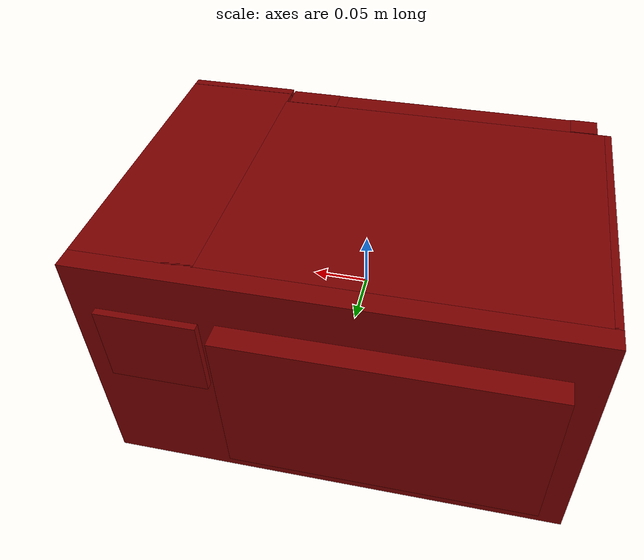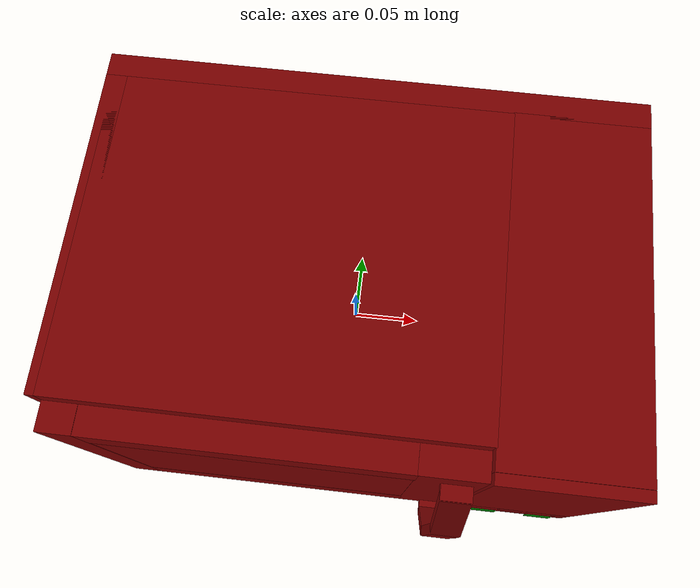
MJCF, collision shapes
<mujoco model="model">
  <compiler angle="radian"/>
  <asset>
    <mesh file="visuals/door.obj" name="door_vis"/>
    <mesh file="visuals/door_Clear.obj" name="door_Clear_vis"/>
    <mesh file="visuals/Body001.obj" name="Body001_vis"/>
    <mesh file="visuals/Button001.obj" name="Button001_vis"/>
    <mesh file="visuals/Button002.obj" name="Button002_vis"/>
    <mesh file="visuals/Disc001.obj" name="Disc001_vis"/>
    <texture file="visuals/T_BC001.png" name="Body001_material" type="2d"/>
    <material name="Body001_material" rgba="1 1 1 1.0" texture="Body001_material" shininess="0.5" specular="0.3103448502657381"/>
    <texture file="visuals/T_BC001.png" name="door_material" type="2d"/>
    <material name="door_material" rgba="1 1 1 1.0" texture="door_material" shininess="0.5" specular="0.3103448502657381"/>
    <texture file="visuals/T_BC001.png" name="door_Clear_material" type="2d"/>
    <material name="door_Clear_material" rgba="1 1 1 0.800000011920929" texture="door_Clear_material" shininess="0.5" specular="0.3103448502657381"/>
    <texture file="visuals/T_BC001.png" name="Button001_material" type="2d"/>
    <material name="Button001_material" rgba="1 1 1 1.0" texture="Button001_material" shininess="0.5" specular="0.3103448502657381"/>
    <texture file="visuals/T_BC001.png" name="Button002_material" type="2d"/>
    <material name="Button002_material" rgba="1 1 1 1.0" texture="Button002_material" shininess="0.5" specular="0.3103448502657381"/>
    <texture file="visuals/T_BC001.png" name="Disc001_material" type="2d"/>
    <material name="Disc001_material" rgba="1 1 1 1.0" texture="Disc001_material" shininess="0.5" specular="0.3103448502657381"/>
  </asset>
  <default>
    <default class="visual">
      <geom conaffinity="0" contype="0" group="1" type="mesh"/>
    </default>
    <default class="collision">
      <geom group="0" rgba="0.5 0 0 0.5"/>
    </default>
    <default class="spawn">
      <geom group="0" rgba="1 1 1 0.5" contype="0" conaffinity="0"/>
      <site group="0" rgba="1 1 1 0.5"/>
    </default>
    <default class="region">
      <geom group="1" conaffinity="0" contype="0" rgba="0 1 0 0"/>
    </default>
  </default>
  <worldbody>
    <body>
      <body name="object">
        <geom class="collision" type="box" pos="-0.05099000036716461 0.02648795209825039 -0.07745513319969177" size="0.0954003557562828 0.0954003557562828 0.0022081872448325157" quat="1.0 0.0 0.0 0.0" name="tray" rgba="0 1 0 0.5"/>
        <geom class="collision" type="box" pos="0.12796650826931 -0.1389474719762802 -0.0914270207285881" size="0.010516499169170856 0.00045945128658786416 0.005988413468003273" quat="1.0 0.0 0.0 0.0" name="start_button" rgba="0.0 0.5 0 0.5"/>
        <geom class="collision" type="box" pos="0.17628632485866547 -0.1389474719762802 -0.09162887930870056" size="0.010516501031816006 0.0004594513447955251 0.005988414864987135" quat="1.0 0.0 0.0 0.0" name="stop_button" rgba="0.0 0.5 0 0.5"/>
        <geom mesh="Body001_vis" type="mesh" solimp="0.998 0.998 0.001" solref="0.001 1" density="100" friction="0.95 0.3 0.1" class="visual" material="Body001_material"/>
        <geom class="collision" type="box" pos="1.4348188415169716e-08 0.13933226466178894 -4.831235855817795e-09" size="0.20219705998897552 0.009999613277614117 0.11311747133731842" quat="1.0 0.0 0.0 0.0"/>
        <geom class="collision" type="box" pos="-0.1942330151796341 0.008786446414887905 -4.831235855817795e-09" size="0.007964090444147587 0.12222838401794434 0.11311747133731842" quat="1.0 0.0 0.0 0.0"/>
        <geom class="collision" type="box" pos="0.1521015614271164 0.0016505586681887507 -4.831235855817795e-09" size="0.05009554699063301 0.13005173206329346 0.11311747133731842" quat="1.0 0.0 0.0 0.0"/>
        <geom class="collision" type="box" pos="-0.0465652197599411 0.008786432445049286 0.10253211855888367" size="0.1495094895362854 0.12222840636968613 0.010585399344563484" quat="1.0 0.0 0.0 0.0"/>
        <geom class="collision" type="box" pos="-0.0465652197599411 0.008786432445049286 -0.10107842832803726" size="0.1495094895362854 0.12222839891910553 0.012039145454764366" quat="1.0 0.0 0.0 0.0"/>
        <geom class="collision" type="box" pos="-0.0465652197599411 -0.09754457324743271 -0.08693338930606842" size="0.1495094746351242 0.014375537633895874 0.0023294060956686735" quat="1.0 0.0 0.0 0.0"/>
        <geom class="collision" type="box" pos="0.0944364070892334 0.008786446414887905 0.00086567597463727" size="0.00913462694734335 0.12070714682340622 0.09062015265226364" quat="1.0 0.0 0.0 0.0"/>
        <geom class="collision" type="box" pos="-0.0460498109459877 0.15882658958435059 0.00086567597463727" size="0.13114111125469208 0.010570645332336426 0.07321394234895706" quat="1.0 0.0 0.0 0.0"/>
        <geom class="collision" type="box" pos="0.13999605178833008 0.15208840370178223 0.03737804666161537" size="0.04138976335525513 0.0034505727235227823 0.03502754867076874" quat="1.0 0.0 0.0 0.0"/>
        <geom class="collision" type="box" pos="0.1521015614271164 -0.1327347755432129 0.01649644784629345" size="0.05009553208947182 0.004148751962929964 0.0966215431690216" quat="1.0 0.0 0.0 0.0"/>
        <geom class="collision" type="box" pos="0.1521015465259552 -0.1327347606420517 -0.1071324497461319" size="0.05009535700082779 0.004148751962929964 0.005985031835734844" quat="1.0 0.0 0.0 0.0"/>
        <geom class="collision" type="box" pos="0.15268686413764954 -0.1327347755432129 -0.09073615074157715" size="0.009805336594581604 0.0041487449780106544 0.010755348019301891" quat="1.0 0.0 0.0 0.0"/>
        <geom class="collision" type="box" pos="0.10796012729406357 -0.1327347755432129 -0.09073615074157715" size="0.0054266853258013725 0.004148753359913826 0.010755347087979317" quat="1.0 0.0 0.0 0.0"/>
        <geom class="collision" type="box" pos="0.19667455554008484 -0.1327347755432129 -0.09073615074157715" size="0.005522533785551786 0.00414875615388155 0.010755350813269615" quat="1.0 0.0 0.0 0.0"/>
        <body name="door">
          <joint axis="0.0 0.0 1.0" pos="-0.18759776651859283 -0.12725630402565002 0.0" limited="true" name="microjoint" range="-1.5707963267948966 0.0" type="hinge" damping="1" frictionloss="1" armature=".01" stiffness="0.05"/>
          <geom mesh="door_vis" type="mesh" solimp="0.998 0.998 0.001" solref="0.001 1" density="100" friction="0.95 0.3 0.1" class="visual" material="door_material"/>
          <geom class="collision" type="box" pos="-0.17825846374034882 -0.12572531402111053 7.345585618168116e-05" size="0.012089542113244534 0.010277654975652695 0.11239656060934067" quat="1.0 0.0 0.0 0.0"/>
          <geom class="collision" type="box" pos="0.07728265225887299 -0.12572531402111053 -0.00014102598652243614" size="0.022913599386811256 0.010277669876813889 0.1122722253203392" quat="1.0 0.0 0.0 0.0"/>
          <geom class="collision" type="box" pos="-0.05554768443107605 -0.12572532892227173 0.09608612954616547" size="0.11069587618112564 0.01027766615152359 0.01585853286087513" quat="1.0 0.0 0.0 0.0"/>
          <geom class="collision" type="box" pos="-0.05554768443107605 -0.12572532892227173 -0.09366853535175323" size="0.11069587618112564 0.010277658700942993 0.018616169691085815" quat="1.0 0.0 0.0 0.0"/>
          <geom class="collision" type="box" pos="0.08194988965988159 -0.1423739492893219 0.08713401854038239" size="0.010653039440512657 0.0053637376986444 0.004253956954926252" quat="1.0 0.0 0.0 0.0"/>
          <geom class="collision" type="box" pos="0.08194988965988159 -0.1423739492893219 -0.08571717143058777" size="0.010653043165802956 0.0053637376986444 0.004253956954926252" quat="1.0 0.0 0.0 0.0"/>
          <geom class="collision" type="box" pos="0.08194988965988159 -0.15443459153175354 -0.06283354759216309" size="0.0038501075468957424 0.010653049685060978 0.025359345600008965" quat="0.6934394240379333 0.13835389912128448 0.1383538842201233 -0.6934393644332886"/>
          <geom class="collision" type="box" pos="0.08194988965988159 -0.15443459153175354 0.06424000859260559" size="0.0038501068484038115 0.010653049685060978 0.025359343737363815" quat="0.13835376501083374 0.6934393644332886 -0.6934394836425781 0.1383538395166397"/>
          <geom class="collision" type="box" pos="0.08194988965988159 -0.16415800154209137 4.018540494143963e-06" size="0.010653048753738403 0.0038501082453876734 0.036364488303661346" quat="1.0 0.0 0.0 0.0" name="door_handle"/>
          <body name="door_Clear">
            <geom mesh="door_Clear_vis" type="mesh" solimp="0.998 0.998 0.001" solref="0.001 1" density="100" friction="0.95 0.3 0.1" class="visual" material="door_Clear_material"/>
            <geom class="collision" type="box" pos="-0.055789850652217865 -0.13231664896011353 0.001923413947224617" size="0.11349328607320786 0.003455802798271179 0.0824943259358406" quat="1.0 0.0 0.0 0.0"/>
          </body>
        </body>
        <body name="Button001">
          <joint axis="0.0 1.0 0.0" pos="0.12796650826931 -0.13738946616649628 -0.09158383309841156" limited="true" name="Button001_joint" range="0.0 0.0015" type="slide" damping="1" frictionloss="1" armature=".01" stiffness="0.05"/>
          <geom mesh="Button001_vis" type="mesh" solimp="0.998 0.998 0.001" solref="0.001 1" density="100" friction="0.95 0.3 0.1" class="visual" material="Button001_material"/>
          <geom class="collision" type="box" pos="0.12796650826931 -0.13738946616649628 -0.0914270207285881" size="0.010516494512557983 0.0004594511410687119 0.005988410674035549" quat="1.0 0.0 0.0 0.0"/>
        </body>
        <body name="Button002">
          <joint axis="0.0 1.0 0.0" pos="0.17628632485866547 -0.13738946616649628 -0.09162887930870056" limited="true" name="Button002_joint" range="0.0 0.0015" type="slide" damping="1" frictionloss="1" armature=".01" stiffness="0.05"/>
          <geom mesh="Button002_vis" type="mesh" solimp="0.998 0.998 0.001" solref="0.001 1" density="100" friction="0.95 0.3 0.1" class="visual" material="Button002_material"/>
          <geom class="collision" type="box" pos="0.17628632485866547 -0.13738946616649628 -0.09162887930870056" size="0.010516496375203133 0.0004594511992763728 0.005988412071019411" quat="1.0 0.0 0.0 0.0"/>
        </body>
        <body name="Disc001">
          <joint axis="0.0 0.0 1.0" pos="-0.05099000036716461 0.02648795209825039 -0.08152633905410767" limited="false" name="Disc001_joint" range="0 360" type="hinge" damping="1" frictionloss="1" armature=".01" stiffness="0.05"/>
          <geom mesh="Disc001_vis" type="mesh" solimp="0.998 0.998 0.001" solref="0.001 1" density="100" friction="0.95 0.3 0.1" class="visual" material="Disc001_material"/>
          <geom class="collision" type="cylinder" pos="-0.05099000036716461 0.02648795209825039 -0.08333335071802139" size="0.0954003557562828 0.0022081872448325157" quat="1.0 0.0 0.0 0.0"/>
        </body>
        <geom class="region" name="reg_main" type="box" pos="-3.725290298461914e-09 0.015923410654067993 0.0" size="0.2021970897912979 0.15347382426261902 0.11311747133731842"/>
        <geom class="region" name="reg_int" type="box" pos="-0.04771116003394127 0.02625514566898346 0.004019197076559067" size="0.14497092738747597 0.11030887067317963 0.09020712599158287"/>
      </body>
    </body>
  </worldbody>
  <actuator>
    <motor name="microjoint_actuator" joint="microjoint" gear="10"/>
    <motor name="Button001_joint_actuator" joint="Button001_joint" gear="0.5"/>
    <motor name="Button002_joint_actuator" joint="Button002_joint" gear="0.5"/>
    <motor name="Disc001_joint_actuator" joint="Disc001_joint" gear="0.5"/>
  </actuator>
</mujoco>
